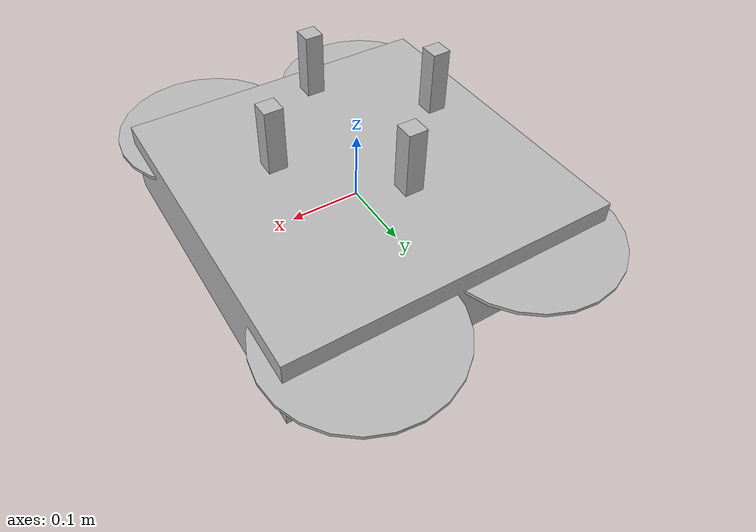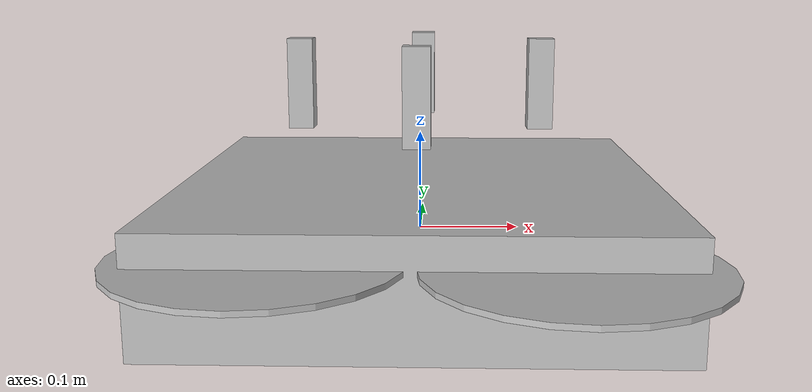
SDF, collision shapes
<?xml version="1.0" ?>
<sdf version="1.7">
  <model name='iris_D435i'>
    <include>
      <uri>model://iris</uri>
    </include>

    <include>
      <name>front_camera</name>
      <uri>model://D435i_front</uri>
      <pose>0.12 0 0.15 1.57 0 1.57</pose>
    </include>

    <include>
      <name>left_camera</name>
      <uri>model://D435i_left</uri>
      <pose>0 0.12 0.15 1.57 0 3.14</pose>
    </include>

    <include>
      <name>rear_camera</name>
      <uri>model://D435i_rear</uri>
      <pose>-0.12 0 0.15 1.57 0 -1.57</pose>
    </include>

    <include>
      <name>right_camera</name>
      <uri>model://D435i_right</uri>
      <pose>0 -0.12 0.15 1.57 0 0</pose>
    </include>

    <joint name="front_realsense_camera_joint" type="fixed">
      <child>front_camera::camera_link</child>
      <parent>iris::base_link</parent>
      <axis>
        <xyz>0 0 1</xyz>
        <limit>
          <upper>0</upper>
          <lower>0</lower>
        </limit>
      </axis>
    </joint>
    <joint name="left_realsense_camera_joint" type="fixed">
      <child>left_camera::camera_link</child>
      <parent>iris::base_link</parent>
      <axis>
        <xyz>0 0 1</xyz>
        <limit>
          <upper>0</upper>
          <lower>0</lower>
        </limit>
      </axis>
    </joint>
    <joint name="rear_realsense_camera_joint" type="fixed">
      <child>rear_camera::camera_link</child>
      <parent>iris::base_link</parent>
      <axis>
        <xyz>0 0 1</xyz>
        <limit>
          <upper>0</upper>
          <lower>0</lower>
        </limit>
      </axis>
    </joint>
    <joint name="right_realsense_camera_joint" type="fixed">
      <child>right_camera::camera_link</child>
      <parent>iris::base_link</parent>
      <axis>
        <xyz>0 0 1</xyz>
        <limit>
          <upper>0</upper>
          <lower>0</lower>
        </limit>
      </axis>
    </joint>

  </model>
</sdf>
